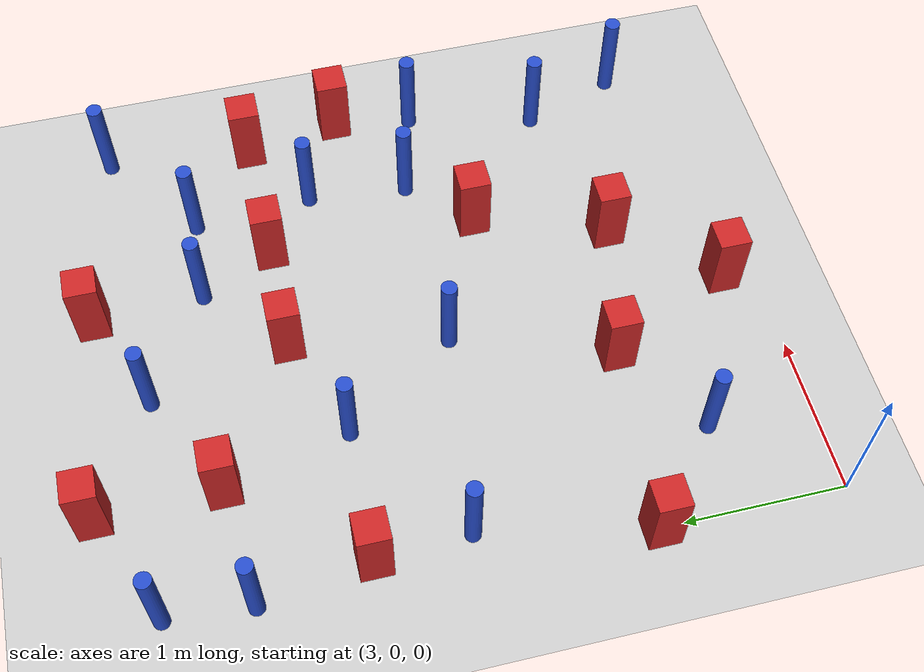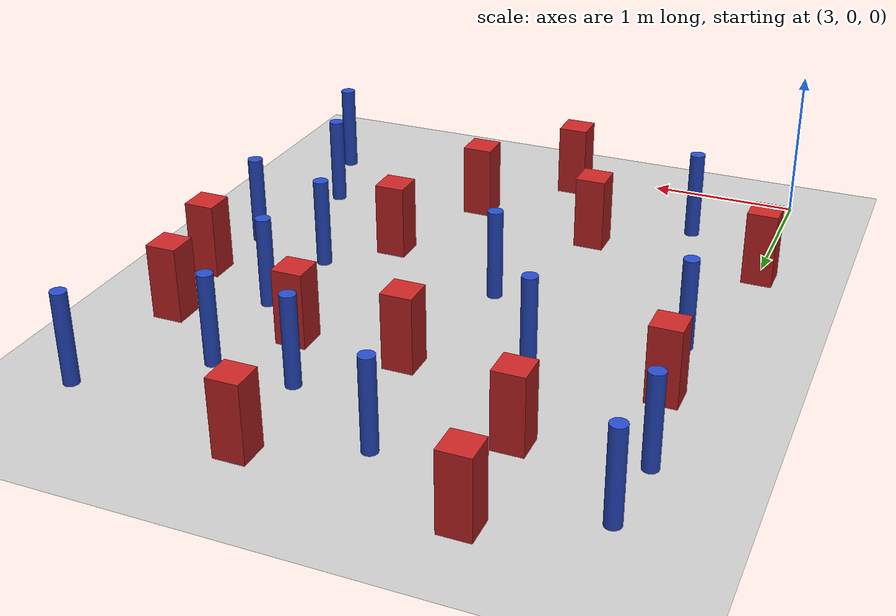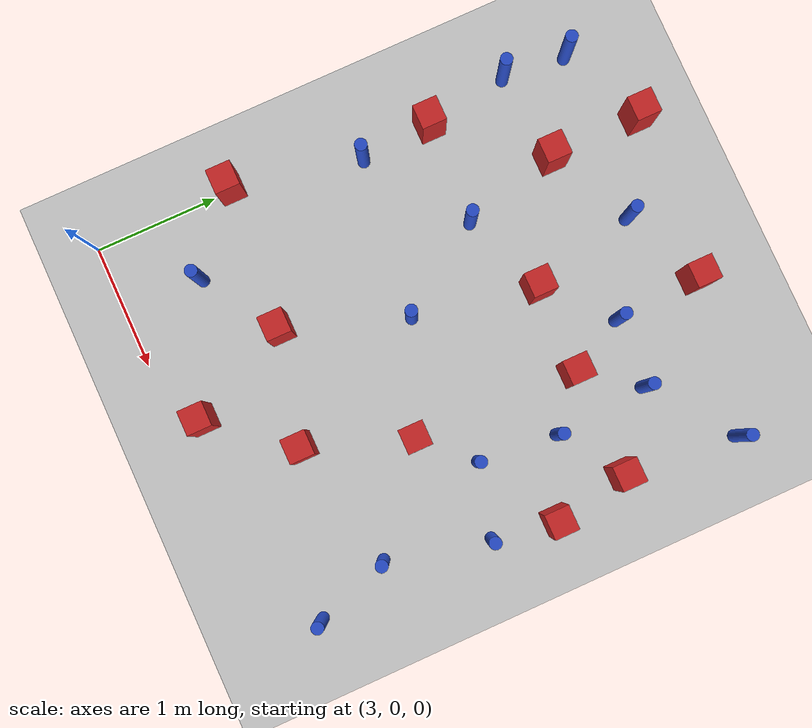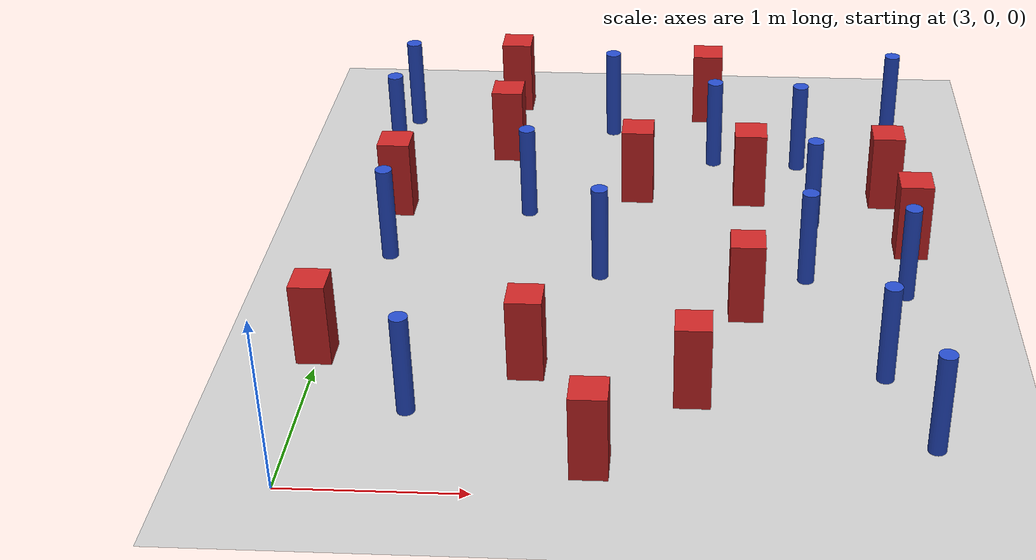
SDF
<sdf version="1.6">
 <world name="default">
  <model name="ground_plane">
   <static>1</static>
   <link name="link">
    <collision name="collision">
     <geometry><plane><normal>0 0 1</normal><size>100 100</size></plane></geometry>
     <surface><friction><ode><mu>100</mu><mu2>50</mu2></ode></friction></surface>
    </collision>
    <visual name="visual">
     <cast_shadows>0</cast_shadows>
     <geometry><plane><normal>0 0 1</normal><size>100 100</size></plane></geometry>
     <material>
      <ambient>1.0 1.0 1.0 1.0</ambient>
      <diffuse>0.8 0.8 0.8 1.0</diffuse>
      <specular>0.01 0.01 0.01 1.000000</specular>
     </material>
    </visual>
   </link>
  </model>
  <model name="pole_obstacle0">
   <static>true</static>
   <pose>4.51293915702 2.02923295959 2.88873142074e-08 -9.90536689683e-09 4.60219948993e-07 -1.20965994957e-07</pose>
   <link name="link">
    <pose>0 0 0.3 0 -0 0</pose>
    <inertial>
     <mass>1</mass>
     <inertia><ixx>0.145833</ixx><ixy>0</ixy><ixz>0</ixz><iyy>0.145833</iyy><iyz>0</iyz><izz>0.125</izz></inertia>
    </inertial>
    <collision name="collision">
     <geometry><cylinder><radius>0.05</radius><length>.6</length></cylinder></geometry>
    </collision>
    <visual name="visual">
     <geometry><cylinder><radius>0.05</radius><length>.6</length></cylinder></geometry>
     <material>
      <script><name>Gazebo/Blue</name><uri>file://media/materials/scripts/gazebo.material</uri></script>
     </material>
    </visual>
   </link>
  </model>
  <model name="square_post_obstacle4">
   <static>true</static>
   <pose>2.9893026464 1.14969682416 8.22691968438e-08 7.2212513382e-06 -7.54495500217e-07 2.29674213826e-05</pose>
   <link name="link">
    <pose>0 0 0.25 0 -0 0</pose>
    <inertial>
     <mass>100</mass>
     <inertia>
      <ixx>0.166667</ixx>
      <ixy>0</ixy>
      <ixz>0</ixz>
      <iyy>0.166667</iyy>
      <iyz>0</iyz>
      <izz>0.166667</izz>
     </inertia>
    </inertial>
    <collision name="collision"><geometry><box><size>.2 .2 .5</size></box></geometry></collision>
    <visual name="visual">
     <geometry><box><size>.2 .2 .5</size></box></geometry>
     <material>
      <script><name>Gazebo/Red</name><uri>file://media/materials/scripts/gazebo.material</uri></script>
     </material>
    </visual>
   </link>
  </model>
  <model name="square_post_obstacle12">
   <static>true</static>
   <pose>5.37687361299 1.67094948875 8.22691968438e-08 7.2212513382e-06 -7.54495500217e-07 2.29674213826e-05</pose>
   <link name="link">
    <pose>0 0 0.25 0 -0 0</pose>
    <inertial>
     <mass>100</mass>
     <inertia>
      <ixx>0.166667</ixx>
      <ixy>0</ixy>
      <ixz>0</ixz>
      <iyy>0.166667</iyy>
      <iyz>0</iyz>
      <izz>0.166667</izz>
     </inertia>
    </inertial>
    <collision name="collision"><geometry><box><size>.2 .2 .5</size></box></geometry></collision>
    <visual name="visual">
     <geometry><box><size>.2 .2 .5</size></box></geometry>
     <material>
      <script><name>Gazebo/Red</name><uri>file://media/materials/scripts/gazebo.material</uri></script>
     </material>
    </visual>
   </link>
  </model>
  <model name="pole_obstacle41">
   <static>true</static>
   <pose>5.74391420218 3.44088116287 2.88873142074e-08 -9.90536690245e-09 4.6021994898e-07 -1.20965994966e-07</pose>
   <link name="link">
    <pose>0 0 0.3 0 -0 0</pose>
    <inertial>
     <mass>1</mass>
     <inertia><ixx>0.145833</ixx><ixy>0</ixy><ixz>0</ixz><iyy>0.145833</iyy><iyz>0</iyz><izz>0.125</izz></inertia>
    </inertial>
    <collision name="collision">
     <geometry><cylinder><radius>0.05</radius><length>.6</length></cylinder></geometry>
    </collision>
    <visual name="visual">
     <geometry><cylinder><radius>0.05</radius><length>.6</length></cylinder></geometry>
     <material>
      <script><name>Gazebo/Blue</name><uri>file://media/materials/scripts/gazebo.material</uri></script>
     </material>
    </visual>
   </link>
  </model>
  <model name="square_post_obstacle76">
   <static>true</static>
   <pose>6.28206339309 3.00636175448 8.22691968438e-08 7.2212513382e-06 -7.54495500217e-07 2.29674213826e-05</pose>
   <link name="link">
    <pose>0 0 0.25 0 -0 0</pose>
    <inertial>
     <mass>100</mass>
     <inertia>
      <ixx>0.166667</ixx>
      <ixy>0</ixy>
      <ixz>0</ixz>
      <iyy>0.166667</iyy>
      <iyz>0</iyz>
      <izz>0.166667</izz>
     </inertia>
    </inertial>
    <collision name="collision"><geometry><box><size>.2 .2 .5</size></box></geometry></collision>
    <visual name="visual">
     <geometry><box><size>.2 .2 .5</size></box></geometry>
     <material>
      <script><name>Gazebo/Red</name><uri>file://media/materials/scripts/gazebo.material</uri></script>
     </material>
    </visual>
   </link>
  </model>
  <model name="square_post_obstacle78">
   <static>true</static>
   <pose>5.08093108655 0.841347274774 8.22691968438e-08 7.2212513382e-06 -7.54495500217e-07 2.29674213826e-05</pose>
   <link name="link">
    <pose>0 0 0.25 0 -0 0</pose>
    <inertial>
     <mass>100</mass>
     <inertia>
      <ixx>0.166667</ixx>
      <ixy>0</ixy>
      <ixz>0</ixz>
      <iyy>0.166667</iyy>
      <iyz>0</iyz>
      <izz>0.166667</izz>
     </inertia>
    </inertial>
    <collision name="collision"><geometry><box><size>.2 .2 .5</size></box></geometry></collision>
    <visual name="visual">
     <geometry><box><size>.2 .2 .5</size></box></geometry>
     <material>
      <script><name>Gazebo/Red</name><uri>file://media/materials/scripts/gazebo.material</uri></script>
     </material>
    </visual>
   </link>
  </model>
  <model name="pole_obstacle82">
   <static>true</static>
   <pose>4.01587517536 2.75673903796 2.88873142074e-08 -9.90536689988e-09 4.60219948986e-07 -1.20965994963e-07</pose>
   <link name="link">
    <pose>0 0 0.3 0 -0 0</pose>
    <inertial>
     <mass>1</mass>
     <inertia><ixx>0.145833</ixx><ixy>0</ixy><ixz>0</ixz><iyy>0.145833</iyy><iyz>0</iyz><izz>0.125</izz></inertia>
    </inertial>
    <collision name="collision">
     <geometry><cylinder><radius>0.05</radius><length>.6</length></cylinder></geometry>
    </collision>
    <visual name="visual">
     <geometry><cylinder><radius>0.05</radius><length>.6</length></cylinder></geometry>
     <material>
      <script><name>Gazebo/Blue</name><uri>file://media/materials/scripts/gazebo.material</uri></script>
     </material>
    </visual>
   </link>
  </model>
  <model name="pole_obstacle87">
   <static>true</static>
   <pose>6.34231356287 0.455687302859 2.88873142074e-08 -9.90536689483e-09 4.60219948998e-07 -1.20965994956e-07</pose>
   <link name="link">
    <pose>0 0 0.3 0 -0 0</pose>
    <inertial>
     <mass>1</mass>
     <inertia><ixx>0.145833</ixx><ixy>0</ixy><ixz>0</ixz><iyy>0.145833</iyy><iyz>0</iyz><izz>0.125</izz></inertia>
    </inertial>
    <collision name="collision">
     <geometry><cylinder><radius>0.05</radius><length>.6</length></cylinder></geometry>
    </collision>
    <visual name="visual">
     <geometry><cylinder><radius>0.05</radius><length>.6</length></cylinder></geometry>
     <material>
      <script><name>Gazebo/Blue</name><uri>file://media/materials/scripts/gazebo.material</uri></script>
     </material>
    </visual>
   </link>
  </model>
  <model name="pole_obstacle91">
   <static>true</static>
   <pose>3.21618884168 2.19915873179 2.88873142074e-08 -9.90536690232e-09 4.6021994898e-07 -1.20965994968e-07</pose>
   <link name="link">
    <pose>0 0 0.3 0 -0 0</pose>
    <inertial>
     <mass>1</mass>
     <inertia><ixx>0.145833</ixx><ixy>0</ixy><ixz>0</ixz><iyy>0.145833</iyy><iyz>0</iyz><izz>0.125</izz></inertia>
    </inertial>
    <collision name="collision">
     <geometry><cylinder><radius>0.05</radius><length>.6</length></cylinder></geometry>
    </collision>
    <visual name="visual">
     <geometry><cylinder><radius>0.05</radius><length>.6</length></cylinder></geometry>
     <material>
      <script><name>Gazebo/Blue</name><uri>file://media/materials/scripts/gazebo.material</uri></script>
     </material>
    </visual>
   </link>
  </model>
  <model name="square_post_obstacle83">
   <static>true</static>
   <pose>4.6980856419 3.0150080861 8.22691968438e-08 7.2212513382e-06 -7.54495500217e-07 2.29674213826e-05</pose>
   <link name="link">
    <pose>0 0 0.25 0 -0 0</pose>
    <inertial>
     <mass>100</mass>
     <inertia>
      <ixx>0.166667</ixx>
      <ixy>0</ixy>
      <ixz>0</ixz>
      <iyy>0.166667</iyy>
      <iyz>0</iyz>
      <izz>0.166667</izz>
     </inertia>
    </inertial>
    <collision name="collision"><geometry><box><size>.2 .2 .5</size></box></geometry></collision>
    <visual name="visual">
     <geometry><box><size>.2 .2 .5</size></box></geometry>
     <material>
      <script><name>Gazebo/Red</name><uri>file://media/materials/scripts/gazebo.material</uri></script>
     </material>
    </visual>
   </link>
  </model>
  <model name="pole_obstacle102">
   <static>true</static>
   <pose>3.56580393262 0.659137649616 2.88873142074e-08 -9.90536689285e-09 4.60219949002e-07 -1.20965994953e-07</pose>
   <link name="link">
    <pose>0 0 0.3 0 -0 0</pose>
    <inertial>
     <mass>1</mass>
     <inertia><ixx>0.145833</ixx><ixy>0</ixy><ixz>0</ixz><iyy>0.145833</iyy><iyz>0</iyz><izz>0.125</izz></inertia>
    </inertial>
    <collision name="collision">
     <geometry><cylinder><radius>0.05</radius><length>.6</length></cylinder></geometry>
    </collision>
    <visual name="visual">
     <geometry><cylinder><radius>0.05</radius><length>.6</length></cylinder></geometry>
     <material>
      <script><name>Gazebo/Blue</name><uri>file://media/materials/scripts/gazebo.material</uri></script>
     </material>
    </visual>
   </link>
  </model>
  <model name="square_post_obstacle94">
   <static>true</static>
   <pose>3.80946990364 3.54113547055 8.22691968438e-08 7.2212513382e-06 -7.54495500217e-07 2.29674213826e-05</pose>
   <link name="link">
    <pose>0 0 0.25 0 -0 0</pose>
    <inertial>
     <mass>100</mass>
     <inertia>
      <ixx>0.166667</ixx>
      <ixy>0</ixy>
      <ixz>0</ixz>
      <iyy>0.166667</iyy>
      <iyz>0</iyz>
      <izz>0.166667</izz>
     </inertia>
    </inertial>
    <collision name="collision"><geometry><box><size>.2 .2 .5</size></box></geometry></collision>
    <visual name="visual">
     <geometry><box><size>.2 .2 .5</size></box></geometry>
     <material>
      <script><name>Gazebo/Red</name><uri>file://media/materials/scripts/gazebo.material</uri></script>
     </material>
    </visual>
   </link>
  </model>
  <model name="square_post_obstacle101">
   <static>true</static>
   <pose>3.79438662336 4.29784079258 8.22691968438e-08 7.2212513382e-06 -7.54495500217e-07 2.29674213826e-05</pose>
   <link name="link">
    <pose>0 0 0.25 0 -0 0</pose>
    <inertial>
     <mass>100</mass>
     <inertia>
      <ixx>0.166667</ixx>
      <ixy>0</ixy>
      <ixz>0</ixz>
      <iyy>0.166667</iyy>
      <iyz>0</iyz>
      <izz>0.166667</izz>
     </inertia>
    </inertial>
    <collision name="collision"><geometry><box><size>.2 .2 .5</size></box></geometry></collision>
    <visual name="visual">
     <geometry><box><size>.2 .2 .5</size></box></geometry>
     <material>
      <script><name>Gazebo/Red</name><uri>file://media/materials/scripts/gazebo.material</uri></script>
     </material>
    </visual>
   </link>
  </model>
  <model name="square_post_obstacle107">
   <static>true</static>
   <pose>5.13730924741 4.16825675708 8.22691968438e-08 7.2212513382e-06 -7.54495500217e-07 2.29674213826e-05</pose>
   <link name="link">
    <pose>0 0 0.25 0 -0 0</pose>
    <inertial>
     <mass>100</mass>
     <inertia>
      <ixx>0.166667</ixx>
      <ixy>0</ixy>
      <ixz>0</ixz>
      <iyy>0.166667</iyy>
      <iyz>0</iyz>
      <izz>0.166667</izz>
     </inertia>
    </inertial>
    <collision name="collision"><geometry><box><size>.2 .2 .5</size></box></geometry></collision>
    <visual name="visual">
     <geometry><box><size>.2 .2 .5</size></box></geometry>
     <material>
      <script><name>Gazebo/Red</name><uri>file://media/materials/scripts/gazebo.material</uri></script>
     </material>
    </visual>
   </link>
  </model>
  <model name="pole_obstacle135">
   <static>true</static>
   <pose>4.49271970296 3.89093577603 2.88873142074e-08 -9.90536690245e-09 4.6021994898e-07 -1.20965994966e-07</pose>
   <link name="link">
    <pose>0 0 0.3 0 -0 0</pose>
    <inertial>
     <mass>1</mass>
     <inertia><ixx>0.145833</ixx><ixy>0</ixy><ixz>0</ixz><iyy>0.145833</iyy><iyz>0</iyz><izz>0.125</izz></inertia>
    </inertial>
    <collision name="collision">
     <geometry><cylinder><radius>0.05</radius><length>.6</length></cylinder></geometry>
    </collision>
    <visual name="visual">
     <geometry><cylinder><radius>0.05</radius><length>.6</length></cylinder></geometry>
     <material>
      <script><name>Gazebo/Blue</name><uri>file://media/materials/scripts/gazebo.material</uri></script>
     </material>
    </visual>
   </link>
  </model>
  <model name="square_post_obstacle121">
   <static>true</static>
   <pose>3.1803211415 2.78216624069 8.22691968438e-08 7.2212513382e-06 -7.54495500217e-07 2.29674213826e-05</pose>
   <link name="link">
    <pose>0 0 0.25 0 -0 0</pose>
    <inertial>
     <mass>100</mass>
     <inertia>
      <ixx>0.166667</ixx>
      <ixy>0</ixy>
      <ixz>0</ixz>
      <iyy>0.166667</iyy>
      <iyz>0</iyz>
      <izz>0.166667</izz>
     </inertia>
    </inertial>
    <collision name="collision"><geometry><box><size>.2 .2 .5</size></box></geometry></collision>
    <visual name="visual">
     <geometry><box><size>.2 .2 .5</size></box></geometry>
     <material>
      <script><name>Gazebo/Red</name><uri>file://media/materials/scripts/gazebo.material</uri></script>
     </material>
    </visual>
   </link>
  </model>
  <model name="pole_obstacle147">
   <static>true</static>
   <pose>5.18682617834 3.47356428697 2.88873142074e-08 -9.90536690245e-09 4.6021994898e-07 -1.20965994966e-07</pose>
   <link name="link">
    <pose>0 0 0.3 0 -0 0</pose>
    <inertial>
     <mass>1</mass>
     <inertia><ixx>0.145833</ixx><ixy>0</ixy><ixz>0</ixz><iyy>0.145833</iyy><iyz>0</iyz><izz>0.125</izz></inertia>
    </inertial>
    <collision name="collision">
     <geometry><cylinder><radius>0.05</radius><length>.6</length></cylinder></geometry>
    </collision>
    <visual name="visual">
     <geometry><cylinder><radius>0.05</radius><length>.6</length></cylinder></geometry>
     <material>
      <script><name>Gazebo/Blue</name><uri>file://media/materials/scripts/gazebo.material</uri></script>
     </material>
    </visual>
   </link>
  </model>
  <model name="square_post_obstacle137">
   <static>true</static>
   <pose>4.1720260583 1.05422881319 8.22691968438e-08 7.2212513382e-06 -7.54495500217e-07 2.29674213826e-05</pose>
   <link name="link">
    <pose>0 0 0.25 0 -0 0</pose>
    <inertial>
     <mass>100</mass>
     <inertia>
      <ixx>0.166667</ixx>
      <ixy>0</ixy>
      <ixz>0</ixz>
      <iyy>0.166667</iyy>
      <iyz>0</iyz>
      <izz>0.166667</izz>
     </inertia>
    </inertial>
    <collision name="collision"><geometry><box><size>.2 .2 .5</size></box></geometry></collision>
    <visual name="visual">
     <geometry><box><size>.2 .2 .5</size></box></geometry>
     <material>
      <script><name>Gazebo/Red</name><uri>file://media/materials/scripts/gazebo.material</uri></script>
     </material>
    </visual>
   </link>
  </model>
  <model name="pole_obstacle153">
   <static>true</static>
   <pose>3.06979076151 3.4708507764 2.88873142074e-08 -9.90536690232e-09 4.6021994898e-07 -1.20965994968e-07</pose>
   <link name="link">
    <pose>0 0 0.3 0 -0 0</pose>
    <inertial>
     <mass>1</mass>
     <inertia><ixx>0.145833</ixx><ixy>0</ixy><ixz>0</ixz><iyy>0.145833</iyy><iyz>0</iyz><izz>0.125</izz></inertia>
    </inertial>
    <collision name="collision">
     <geometry><cylinder><radius>0.05</radius><length>.6</length></cylinder></geometry>
    </collision>
    <visual name="visual">
     <geometry><cylinder><radius>0.05</radius><length>.6</length></cylinder></geometry>
     <material>
      <script><name>Gazebo/Blue</name><uri>file://media/materials/scripts/gazebo.material</uri></script>
     </material>
    </visual>
   </link>
  </model>
  <model name="pole_obstacle161">
   <static>true</static>
   <pose>5.80407923226 2.67867637156 2.88873142074e-08 -9.90536690245e-09 4.6021994898e-07 -1.20965994966e-07</pose>
   <link name="link">
    <pose>0 0 0.3 0 -0 0</pose>
    <inertial>
     <mass>1</mass>
     <inertia><ixx>0.145833</ixx><ixy>0</ixy><ixz>0</ixz><iyy>0.145833</iyy><iyz>0</iyz><izz>0.125</izz></inertia>
    </inertial>
    <collision name="collision">
     <geometry><cylinder><radius>0.05</radius><length>.6</length></cylinder></geometry>
    </collision>
    <visual name="visual">
     <geometry><cylinder><radius>0.05</radius><length>.6</length></cylinder></geometry>
     <material>
      <script><name>Gazebo/Blue</name><uri>file://media/materials/scripts/gazebo.material</uri></script>
     </material>
    </visual>
   </link>
  </model>
  <model name="pole_obstacle166">
   <static>true</static>
   <pose>6.12990611764 1.06097854878 2.88873142074e-08 -9.90536689445e-09 4.60219948999e-07 -1.20965994956e-07</pose>
   <link name="link">
    <pose>0 0 0.3 0 -0 0</pose>
    <inertial>
     <mass>1</mass>
     <inertia><ixx>0.145833</ixx><ixy>0</ixy><ixz>0</ixz><iyy>0.145833</iyy><iyz>0</iyz><izz>0.125</izz></inertia>
    </inertial>
    <collision name="collision">
     <geometry><cylinder><radius>0.05</radius><length>.6</length></cylinder></geometry>
    </collision>
    <visual name="visual">
     <geometry><cylinder><radius>0.05</radius><length>.6</length></cylinder></geometry>
     <material>
      <script><name>Gazebo/Blue</name><uri>file://media/materials/scripts/gazebo.material</uri></script>
     </material>
    </visual>
   </link>
  </model>
  <model name="square_post_obstacle159">
   <static>true</static>
   <pose>5.41573912442 3.00063896298 8.22691968438e-08 7.2212513382e-06 -7.54495500217e-07 2.29674213826e-05</pose>
   <link name="link">
    <pose>0 0 0.25 0 -0 0</pose>
    <inertial>
     <mass>100</mass>
     <inertia>
      <ixx>0.166667</ixx>
      <ixy>0</ixy>
      <ixz>0</ixz>
      <iyy>0.166667</iyy>
      <iyz>0</iyz>
      <izz>0.166667</izz>
     </inertia>
    </inertial>
    <collision name="collision"><geometry><box><size>.2 .2 .5</size></box></geometry></collision>
    <visual name="visual">
     <geometry><box><size>.2 .2 .5</size></box></geometry>
     <material>
      <script><name>Gazebo/Red</name><uri>file://media/materials/scripts/gazebo.material</uri></script>
     </material>
    </visual>
   </link>
  </model>
  <model name="pole_obstacle173">
   <static>true</static>
   <pose>5.74182492889 2.03575454787 2.88873142074e-08 -9.90536689683e-09 4.60219948993e-07 -1.20965994957e-07</pose>
   <link name="link">
    <pose>0 0 0.3 0 -0 0</pose>
    <inertial>
     <mass>1</mass>
     <inertia><ixx>0.145833</ixx><ixy>0</ixy><ixz>0</ixz><iyy>0.145833</iyy><iyz>0</iyz><izz>0.125</izz></inertia>
    </inertial>
    <collision name="collision">
     <geometry><cylinder><radius>0.05</radius><length>.6</length></cylinder></geometry>
    </collision>
    <visual name="visual">
     <geometry><cylinder><radius>0.05</radius><length>.6</length></cylinder></geometry>
     <material>
      <script><name>Gazebo/Blue</name><uri>file://media/materials/scripts/gazebo.material</uri></script>
     </material>
    </visual>
   </link>
  </model>
  <model name="square_post_obstacle186">
   <static>true</static>
   <pose>4.57189359863 0.230722008592 8.22691968438e-08 7.2212513382e-06 -7.54495500217e-07 2.29674213826e-05</pose>
   <link name="link">
    <pose>0 0 0.25 0 -0 0</pose>
    <inertial>
     <mass>100</mass>
     <inertia>
      <ixx>0.166667</ixx>
      <ixy>0</ixy>
      <ixz>0</ixz>
      <iyy>0.166667</iyy>
      <iyz>0</iyz>
      <izz>0.166667</izz>
     </inertia>
    </inertial>
    <collision name="collision"><geometry><box><size>.2 .2 .5</size></box></geometry></collision>
    <visual name="visual">
     <geometry><box><size>.2 .2 .5</size></box></geometry>
     <material>
      <script><name>Gazebo/Red</name><uri>file://media/materials/scripts/gazebo.material</uri></script>
     </material>
    </visual>
   </link>
  </model>
  <model name="square_post_obstacle189">
   <static>true</static>
   <pose>6.39486991731 2.39849248064 8.22691968438e-08 7.2212513382e-06 -7.54495500217e-07 2.29674213826e-05</pose>
   <link name="link">
    <pose>0 0 0.25 0 -0 0</pose>
    <inertial>
     <mass>100</mass>
     <inertia>
      <ixx>0.166667</ixx>
      <ixy>0</ixy>
      <ixz>0</ixz>
      <iyy>0.166667</iyy>
      <iyz>0</iyz>
      <izz>0.166667</izz>
     </inertia>
    </inertial>
    <collision name="collision"><geometry><box><size>.2 .2 .5</size></box></geometry></collision>
    <visual name="visual">
     <geometry><box><size>.2 .2 .5</size></box></geometry>
     <material>
      <script><name>Gazebo/Red</name><uri>file://media/materials/scripts/gazebo.material</uri></script>
     </material>
    </visual>
   </link>
  </model>
  <model name="pole_obstacle211">
   <static>true</static>
   <pose>3.11225511799 3.99405729196 2.88873142074e-08 -9.90536690801e-09 4.60219948966e-07 -1.20965994976e-07</pose>
   <link name="link">
    <pose>0 0 0.3 0 -0 0</pose>
    <inertial>
     <mass>1</mass>
     <inertia><ixx>0.145833</ixx><ixy>0</ixy><ixz>0</ixz><iyy>0.145833</iyy><iyz>0</iyz><izz>0.125</izz></inertia>
    </inertial>
    <collision name="collision">
     <geometry><cylinder><radius>0.05</radius><length>.6</length></cylinder></geometry>
    </collision>
    <visual name="visual">
     <geometry><cylinder><radius>0.05</radius><length>.6</length></cylinder></geometry>
     <material>
      <script><name>Gazebo/Blue</name><uri>file://media/materials/scripts/gazebo.material</uri></script>
     </material>
    </visual>
   </link>
  </model>
  <model name="pole_obstacle216">
   <static>true</static>
   <pose>6.3210711939 1.8857669132 2.88873142074e-08 -9.90536689445e-09 4.60219948999e-07 -1.20965994956e-07</pose>
   <link name="link">
    <pose>0 0 0.3 0 -0 0</pose>
    <inertial>
     <mass>1</mass>
     <inertia><ixx>0.145833</ixx><ixy>0</ixy><ixz>0</ixz><iyy>0.145833</iyy><iyz>0</iyz><izz>0.125</izz></inertia>
    </inertial>
    <collision name="collision">
     <geometry><cylinder><radius>0.05</radius><length>.6</length></cylinder></geometry>
    </collision>
    <visual name="visual">
     <geometry><cylinder><radius>0.05</radius><length>.6</length></cylinder></geometry>
     <material>
      <script><name>Gazebo/Blue</name><uri>file://media/materials/scripts/gazebo.material</uri></script>
     </material>
    </visual>
   </link>
  </model>
  <model name="pole_obstacle217">
   <static>true</static>
   <pose>6.38347608431 3.93608233605 2.88873142074e-08 -9.90536690245e-09 4.6021994898e-07 -1.20965994966e-07</pose>
   <link name="link">
    <pose>0 0 0.3 0 -0 0</pose>
    <inertial>
     <mass>1</mass>
     <inertia><ixx>0.145833</ixx><ixy>0</ixy><ixz>0</ixz><iyy>0.145833</iyy><iyz>0</iyz><izz>0.125</izz></inertia>
    </inertial>
    <collision name="collision">
     <geometry><cylinder><radius>0.05</radius><length>.6</length></cylinder></geometry>
    </collision>
    <visual name="visual">
     <geometry><cylinder><radius>0.05</radius><length>.6</length></cylinder></geometry>
     <material>
      <script><name>Gazebo/Blue</name><uri>file://media/materials/scripts/gazebo.material</uri></script>
     </material>
    </visual>
   </link>
  </model>
 </world>
</sdf>
